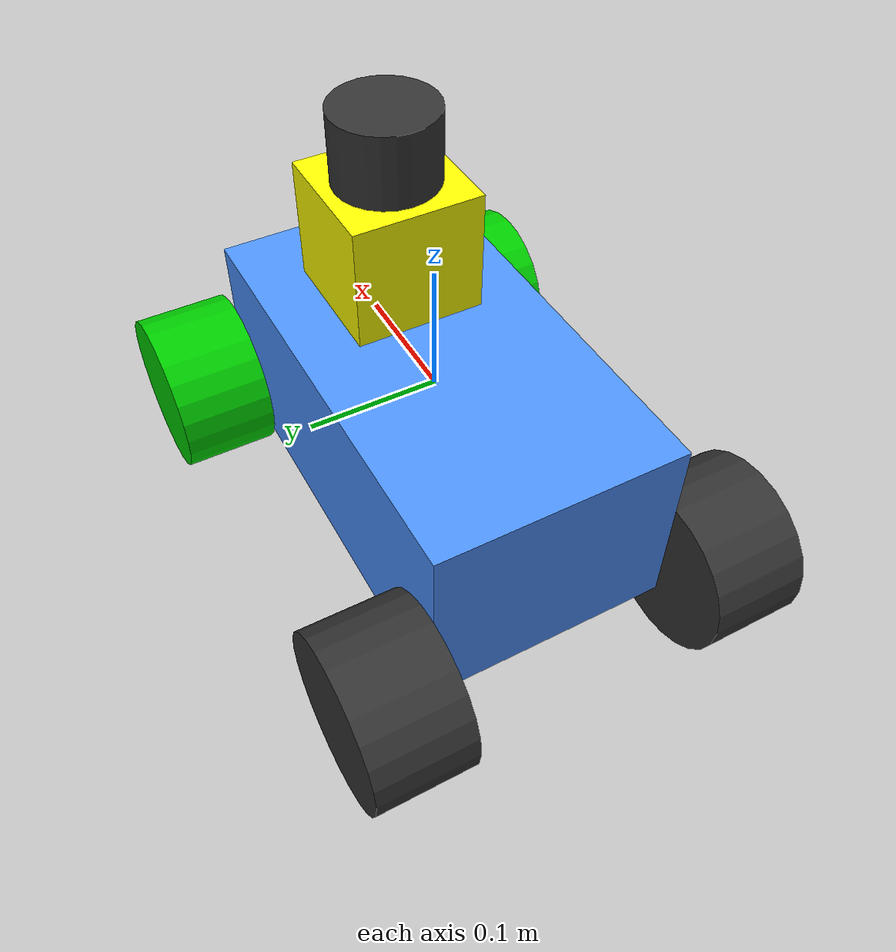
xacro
<?xml version="1.0"?>

<!-- A simple model of the racecar for rviz -->

<robot xmlns:xacro="http://www.ros.org/wiki/xacro" name="racecar">

  <xacro:property name="wheelbase" value="0.35" />
  <xacro:property name="width" value="0.19" />
  <xacro:property name="height" value="0.15" />
  <xacro:property name="ground_offset" value="0.04" />
  <xacro:property name="wheel_radius" value="0.065" />
  <xacro:property name="wheel_length" value="0.075" />
  <xacro:property name="laser_height" value="0.15" />
  <xacro:property name="laser_radius" value="0.04" />
  <xacro:property name="dx" value="-0.15" />
  <material name="black">
    <color rgba="0.2 0.2 0.2 1."/>
  </material>
  <material name="yellow">
    <color rgba="1 1 0 1."/>
  </material>

  <material name="green">
    <color rgba="0.0 0.8 0.0 1.0"/>
  </material>

  <material name="blue">
    <color rgba="0.3 0.57 1. 1."/>
  </material>

  <link name="base_link">
    <visual>
      <origin xyz="0 0 ${ground_offset+height/2+dx}"/>
      <geometry>
        <box size="${wheelbase} ${width} ${height}"/>
      </geometry>
      <material name="blue"/>
    </visual>
  </link>

  <joint name="base_to" type="fixed">
    <parent link="base_link"/>
    <child link="to"/>
    <origin xyz="0.0 0  0.12"/>
  </joint>

  <link name="to">
    <visual>
      <origin xyz="0.07 0 ${ground_offset+height/2+dx}"/>
      <geometry>
        <box size="0.1 0.10 0.10"/>
      </geometry>
      <material name="yellow"/>
    </visual>
  </link>

   <joint name="base_to_laser" type="fixed">
    <parent link="base_link"/>
    <child link="laser"/>
    <origin xyz="0.07 0  ${ground_offset+height+(laser_height/2)+dx}"/>
  </joint>

  <link name="laser">
    <visual>
      <geometry>
        <cylinder radius="${laser_radius}" length="${laser_height}"/>
      </geometry>
      <material name="black"/>
    </visual>
  </link>

  <joint name="base_to_back_left_wheel" type="fixed">
    <parent link="base_link"/>
    <child link="back_left_wheel"/>
    <origin xyz="-${wheelbase/2} ${(wheel_length+width)/2} ${wheel_radius+dx}"/>
  </joint>

  <link name="back_left_wheel">
    <visual>
      <geometry>
        <cylinder radius="${wheel_radius}" length="${wheel_length}"/>
      </geometry>
      <material name="black"/>
      <origin rpy="${pi/2} 0 0"/>
    </visual>
  </link>

  <joint name="base_to_back_right_wheel" type="fixed">
    <parent link="base_link"/>
    <child link="back_right_wheel"/>
    <origin xyz="-${wheelbase/2} ${-(wheel_length+width)/2} ${wheel_radius+dx}"/>
  </joint>

  <link name="back_right_wheel">
    <visual>
      <geometry>
        <cylinder radius="${wheel_radius}" length="${wheel_length}"/>
      </geometry>
      <material name="black"/>
      <origin rpy="${pi/2} 0 0"/>
    </visual>
  </link>

  <joint name="base_to_forward_right_wheel" type="fixed">
    <parent link="base_link"/>
    <child link="forward_right_wheel"/>
    <origin xyz="${wheelbase/2} ${-(wheel_length+width)/2} ${wheel_radius+dx}"/>
  </joint>

  <link name="forward_right_wheel">
    <visual>
      <geometry>
        <cylinder radius="${wheel_radius}" length="${wheel_length}"/>
      </geometry>
      <material name="green"/>
      <origin rpy="${pi/2} 0 0"/>
    </visual>
  </link>

  <joint name="base_to_forward_left_wheel" type="fixed">
    <parent link="base_link"/>
    <child link="forward_left_wheel"/>
    <origin xyz="${wheelbase/2} ${(wheel_length+width)/2} ${wheel_radius+dx}"/>
  </joint>

  <link name="forward_left_wheel">
    <visual>
      <geometry>
        <cylinder radius="${wheel_radius}" length="${wheel_length}"/>
      </geometry>
      <material name="green"/>
      <origin rpy="${pi/2} 0 0"/>
    </visual>
  </link>

</robot>
